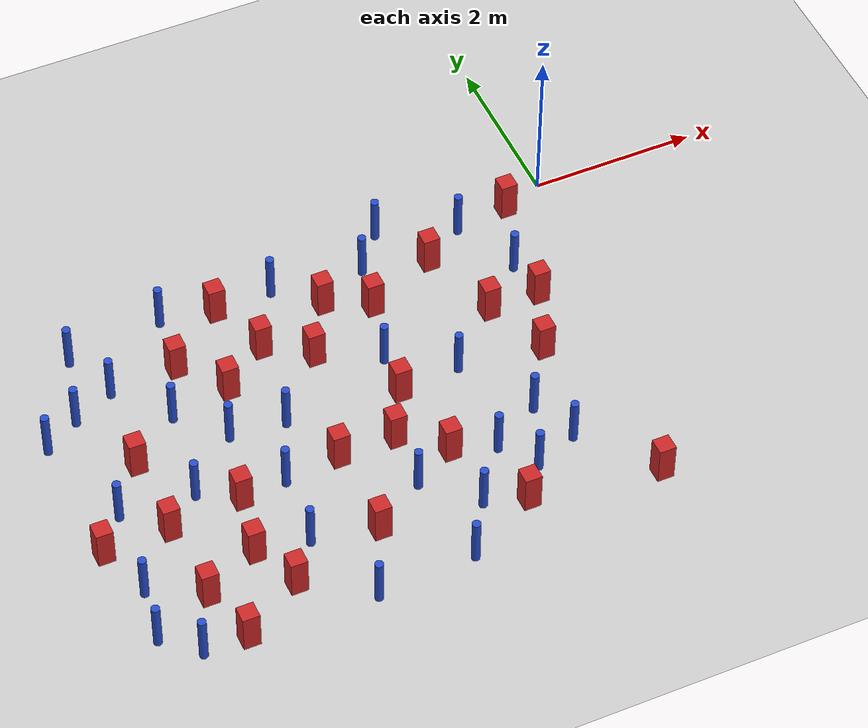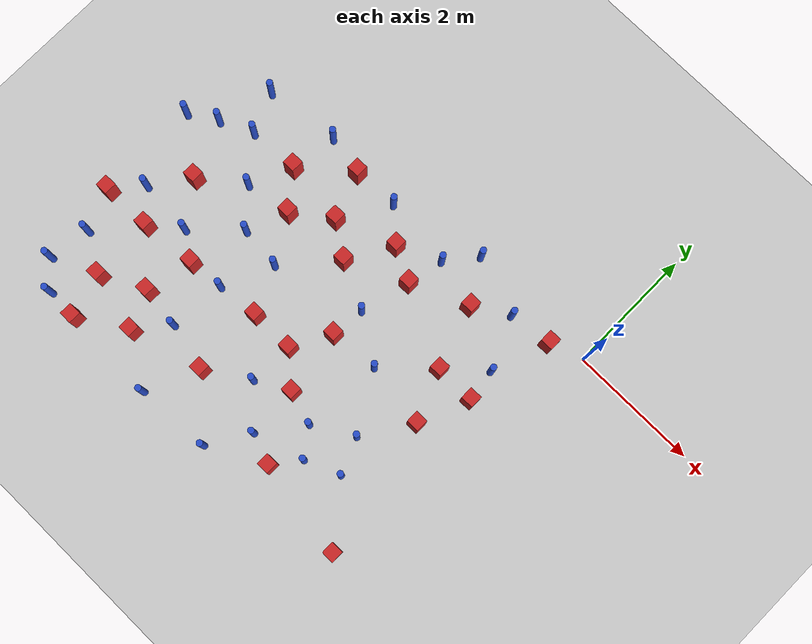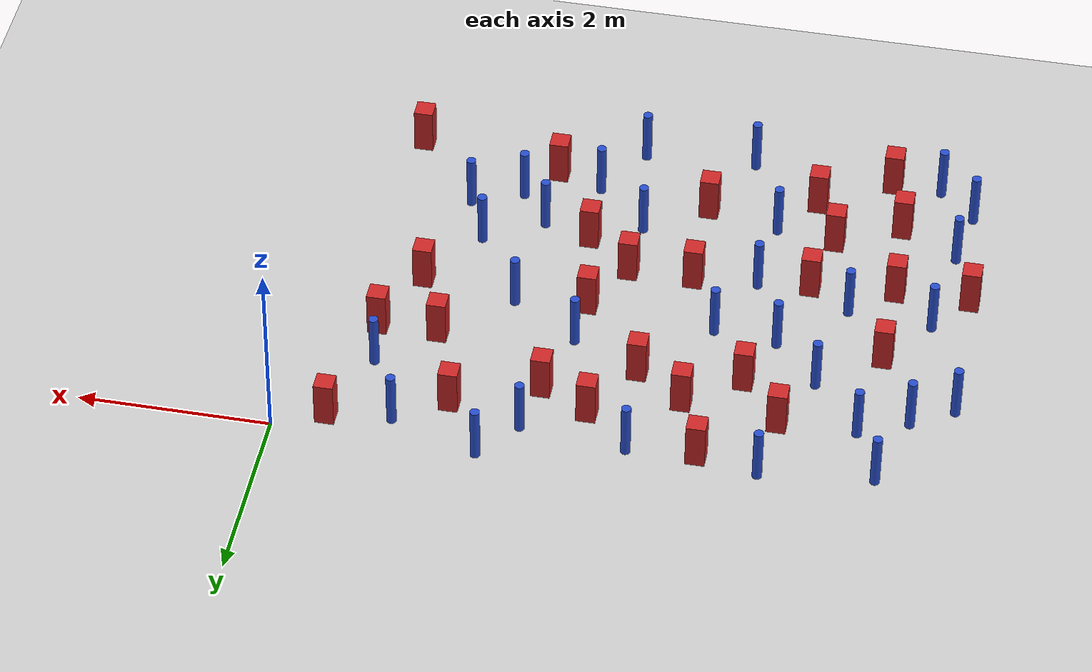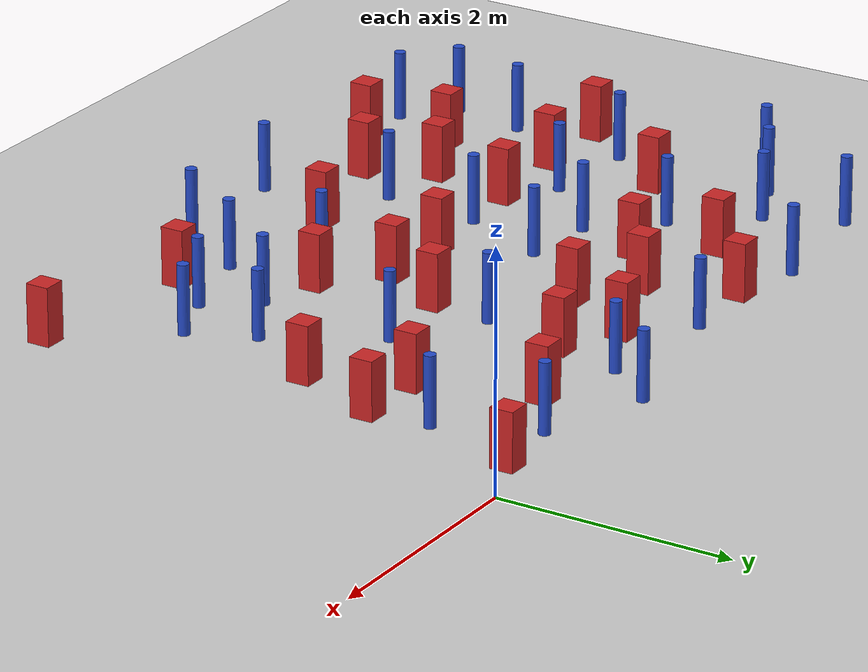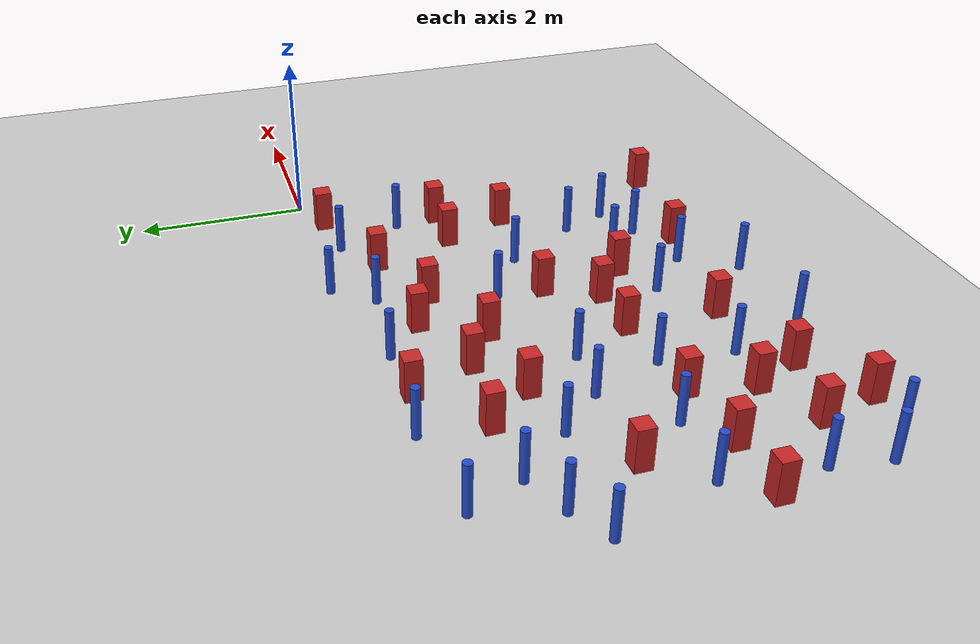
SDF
<sdf version="1.6">
 <world name="default">
  <model name="ground_plane">
   <static>1</static>
   <link name="link">
    <collision name="collision">
     <geometry><plane><normal>0 0 1</normal><size>100 100</size></plane></geometry>
     <surface><friction><ode><mu>100</mu><mu2>50</mu2></ode></friction></surface>
    </collision>
    <visual name="visual">
     <cast_shadows>0</cast_shadows>
     <geometry><plane><normal>0 0 1</normal><size>100 100</size></plane></geometry>
     <material>
      <ambient>1.0 1.0 1.0 1.0</ambient>
      <diffuse>0.8 0.8 0.8 1.0</diffuse>
      <specular>0.01 0.01 0.01 1.000000</specular>
     </material>
    </visual>
   </link>
  </model>
  <model name="pole_obstacle2">
   <static>true</static>
   <pose>-4.19352279488 -4.81479758741 -2.66029137441e-07 -5.69430205655e-07 6.84129966534e-07 -8.68349370984e-08</pose>
   <link name="link">
    <pose>0 0 0.3 0 -0 0</pose>
    <inertial>
     <mass>1</mass>
     <inertia><ixx>0.145833</ixx><ixy>0</ixy><ixz>0</ixz><iyy>0.145833</iyy><iyz>0</iyz><izz>0.125</izz></inertia>
    </inertial>
    <collision name="collision">
     <geometry><cylinder><radius>0.05</radius><length>.6</length></cylinder></geometry>
    </collision>
    <visual name="visual">
     <geometry><cylinder><radius>0.05</radius><length>.6</length></cylinder></geometry>
     <material>
      <script><name>Gazebo/Blue</name><uri>file://media/materials/scripts/gazebo.material</uri></script>
     </material>
    </visual>
   </link>
  </model>
  <model name="square_post_obstacle4">
   <static>true</static>
   <pose>-3.83080562051 -2.89418238608 -7.80171244635e-07 7.17449752808e-06 -5.6639232126e-07 2.2715510512e-05</pose>
   <link name="link">
    <pose>0 0 0.25 0 -0 0</pose>
    <inertial>
     <mass>100</mass>
     <inertia>
      <ixx>0.166667</ixx>
      <ixy>0</ixy>
      <ixz>0</ixz>
      <iyy>0.166667</iyy>
      <iyz>0</iyz>
      <izz>0.166667</izz>
     </inertia>
    </inertial>
    <collision name="collision"><geometry><box><size>.2 .2 .5</size></box></geometry></collision>
    <visual name="visual">
     <geometry><box><size>.2 .2 .5</size></box></geometry>
     <material>
      <script><name>Gazebo/Red</name><uri>file://media/materials/scripts/gazebo.material</uri></script>
     </material>
    </visual>
   </link>
  </model>
  <model name="square_post_obstacle9">
   <static>true</static>
   <pose>-5.68280838163 -4.75966509383 -7.80171244635e-07 7.17449752808e-06 -5.6639232126e-07 2.2715510512e-05</pose>
   <link name="link">
    <pose>0 0 0.25 0 -0 0</pose>
    <inertial>
     <mass>100</mass>
     <inertia>
      <ixx>0.166667</ixx>
      <ixy>0</ixy>
      <ixz>0</ixz>
      <iyy>0.166667</iyy>
      <iyz>0</iyz>
      <izz>0.166667</izz>
     </inertia>
    </inertial>
    <collision name="collision"><geometry><box><size>.2 .2 .5</size></box></geometry></collision>
    <visual name="visual">
     <geometry><box><size>.2 .2 .5</size></box></geometry>
     <material>
      <script><name>Gazebo/Red</name><uri>file://media/materials/scripts/gazebo.material</uri></script>
     </material>
    </visual>
   </link>
  </model>
  <model name="pole_obstacle13">
   <static>true</static>
   <pose>-6.74214288484 -1.471598612 -2.66029137441e-07 -5.69430205627e-07 6.84129966567e-07 -8.68349370776e-08</pose>
   <link name="link">
    <pose>0 0 0.3 0 -0 0</pose>
    <inertial>
     <mass>1</mass>
     <inertia><ixx>0.145833</ixx><ixy>0</ixy><ixz>0</ixz><iyy>0.145833</iyy><iyz>0</iyz><izz>0.125</izz></inertia>
    </inertial>
    <collision name="collision">
     <geometry><cylinder><radius>0.05</radius><length>.6</length></cylinder></geometry>
    </collision>
    <visual name="visual">
     <geometry><cylinder><radius>0.05</radius><length>.6</length></cylinder></geometry>
     <material>
      <script><name>Gazebo/Blue</name><uri>file://media/materials/scripts/gazebo.material</uri></script>
     </material>
    </visual>
   </link>
  </model>
  <model name="square_post_obstacle10">
   <static>true</static>
   <pose>-1.38638351002 -1.59635780547 -7.80171244635e-07 7.17449752808e-06 -5.6639232126e-07 2.2715510512e-05</pose>
   <link name="link">
    <pose>0 0 0.25 0 -0 0</pose>
    <inertial>
     <mass>100</mass>
     <inertia>
      <ixx>0.166667</ixx>
      <ixy>0</ixy>
      <ixz>0</ixz>
      <iyy>0.166667</iyy>
      <iyz>0</iyz>
      <izz>0.166667</izz>
     </inertia>
    </inertial>
    <collision name="collision"><geometry><box><size>.2 .2 .5</size></box></geometry></collision>
    <visual name="visual">
     <geometry><box><size>.2 .2 .5</size></box></geometry>
     <material>
      <script><name>Gazebo/Red</name><uri>file://media/materials/scripts/gazebo.material</uri></script>
     </material>
    </visual>
   </link>
  </model>
  <model name="square_post_obstacle11">
   <static>true</static>
   <pose>-5.19711062765 -3.73991201067 -7.80171244635e-07 7.17449752808e-06 -5.6639232126e-07 2.2715510512e-05</pose>
   <link name="link">
    <pose>0 0 0.25 0 -0 0</pose>
    <inertial>
     <mass>100</mass>
     <inertia>
      <ixx>0.166667</ixx>
      <ixy>0</ixy>
      <ixz>0</ixz>
      <iyy>0.166667</iyy>
      <iyz>0</iyz>
      <izz>0.166667</izz>
     </inertia>
    </inertial>
    <collision name="collision"><geometry><box><size>.2 .2 .5</size></box></geometry></collision>
    <visual name="visual">
     <geometry><box><size>.2 .2 .5</size></box></geometry>
     <material>
      <script><name>Gazebo/Red</name><uri>file://media/materials/scripts/gazebo.material</uri></script>
     </material>
    </visual>
   </link>
  </model>
  <model name="pole_obstacle16">
   <static>true</static>
   <pose>-6.58028330687 -4.39368769634 -2.66029137441e-07 -5.69430205655e-07 6.84129966534e-07 -8.68349370984e-08</pose>
   <link name="link">
    <pose>0 0 0.3 0 -0 0</pose>
    <inertial>
     <mass>1</mass>
     <inertia><ixx>0.145833</ixx><ixy>0</ixy><ixz>0</ixz><iyy>0.145833</iyy><iyz>0</iyz><izz>0.125</izz></inertia>
    </inertial>
    <collision name="collision">
     <geometry><cylinder><radius>0.05</radius><length>.6</length></cylinder></geometry>
    </collision>
    <visual name="visual">
     <geometry><cylinder><radius>0.05</radius><length>.6</length></cylinder></geometry>
     <material>
      <script><name>Gazebo/Blue</name><uri>file://media/materials/scripts/gazebo.material</uri></script>
     </material>
    </visual>
   </link>
  </model>
  <model name="square_post_obstacle18">
   <static>true</static>
   <pose>-1.70859231708 -0.621774522363 -7.80171244635e-07 7.17449752808e-06 -5.6639232126e-07 2.2715510512e-05</pose>
   <link name="link">
    <pose>0 0 0.25 0 -0 0</pose>
    <inertial>
     <mass>100</mass>
     <inertia>
      <ixx>0.166667</ixx>
      <ixy>0</ixy>
      <ixz>0</ixz>
      <iyy>0.166667</iyy>
      <iyz>0</iyz>
      <izz>0.166667</izz>
     </inertia>
    </inertial>
    <collision name="collision"><geometry><box><size>.2 .2 .5</size></box></geometry></collision>
    <visual name="visual">
     <geometry><box><size>.2 .2 .5</size></box></geometry>
     <material>
      <script><name>Gazebo/Red</name><uri>file://media/materials/scripts/gazebo.material</uri></script>
     </material>
    </visual>
   </link>
  </model>
  <model name="pole_obstacle24">
   <static>true</static>
   <pose>-2.63472743599 -4.11659371932 -2.66029137441e-07 -5.69430205635e-07 6.84129966557e-07 -8.68349370832e-08</pose>
   <link name="link">
    <pose>0 0 0.3 0 -0 0</pose>
    <inertial>
     <mass>1</mass>
     <inertia><ixx>0.145833</ixx><ixy>0</ixy><ixz>0</ixz><iyy>0.145833</iyy><iyz>0</iyz><izz>0.125</izz></inertia>
    </inertial>
    <collision name="collision">
     <geometry><cylinder><radius>0.05</radius><length>.6</length></cylinder></geometry>
    </collision>
    <visual name="visual">
     <geometry><cylinder><radius>0.05</radius><length>.6</length></cylinder></geometry>
     <material>
      <script><name>Gazebo/Blue</name><uri>file://media/materials/scripts/gazebo.material</uri></script>
     </material>
    </visual>
   </link>
  </model>
  <model name="square_post_obstacle27">
   <static>true</static>
   <pose>-5.00227021987 -0.949945809549 -7.80171244635e-07 7.17449752808e-06 -5.6639232126e-07 2.2715510512e-05</pose>
   <link name="link">
    <pose>0 0 0.25 0 -0 0</pose>
    <inertial>
     <mass>100</mass>
     <inertia>
      <ixx>0.166667</ixx>
      <ixy>0</ixy>
      <ixz>0</ixz>
      <iyy>0.166667</iyy>
      <iyz>0</iyz>
      <izz>0.166667</izz>
     </inertia>
    </inertial>
    <collision name="collision"><geometry><box><size>.2 .2 .5</size></box></geometry></collision>
    <visual name="visual">
     <geometry><box><size>.2 .2 .5</size></box></geometry>
     <material>
      <script><name>Gazebo/Red</name><uri>file://media/materials/scripts/gazebo.material</uri></script>
     </material>
    </visual>
   </link>
  </model>
  <model name="pole_obstacle41">
   <static>true</static>
   <pose>-5.47940706402 -2.73009144267 -2.66029137441e-07 -5.69430205643e-07 6.84129966548e-07 -8.68349370881e-08</pose>
   <link name="link">
    <pose>0 0 0.3 0 -0 0</pose>
    <inertial>
     <mass>1</mass>
     <inertia><ixx>0.145833</ixx><ixy>0</ixy><ixz>0</ixz><iyy>0.145833</iyy><iyz>0</iyz><izz>0.125</izz></inertia>
    </inertial>
    <collision name="collision">
     <geometry><cylinder><radius>0.05</radius><length>.6</length></cylinder></geometry>
    </collision>
    <visual name="visual">
     <geometry><cylinder><radius>0.05</radius><length>.6</length></cylinder></geometry>
     <material>
      <script><name>Gazebo/Blue</name><uri>file://media/materials/scripts/gazebo.material</uri></script>
     </material>
    </visual>
   </link>
  </model>
  <model name="square_post_obstacle34">
   <static>true</static>
   <pose>-4.27824932551 -0.343052109498 -7.80171244635e-07 7.17449752808e-06 -5.6639232126e-07 2.2715510512e-05</pose>
   <link name="link">
    <pose>0 0 0.25 0 -0 0</pose>
    <inertial>
     <mass>100</mass>
     <inertia>
      <ixx>0.166667</ixx>
      <ixy>0</ixy>
      <ixz>0</ixz>
      <iyy>0.166667</iyy>
      <iyz>0</iyz>
      <izz>0.166667</izz>
     </inertia>
    </inertial>
    <collision name="collision"><geometry><box><size>.2 .2 .5</size></box></geometry></collision>
    <visual name="visual">
     <geometry><box><size>.2 .2 .5</size></box></geometry>
     <material>
      <script><name>Gazebo/Red</name><uri>file://media/materials/scripts/gazebo.material</uri></script>
     </material>
    </visual>
   </link>
  </model>
  <model name="pole_obstacle46">
   <static>true</static>
   <pose>-6.35343098746 -2.66331438429 -2.66029137441e-07 -5.69430205643e-07 6.84129966548e-07 -8.68349370881e-08</pose>
   <link name="link">
    <pose>0 0 0.3 0 -0 0</pose>
    <inertial>
     <mass>1</mass>
     <inertia><ixx>0.145833</ixx><ixy>0</ixy><ixz>0</ixz><iyy>0.145833</iyy><iyz>0</iyz><izz>0.125</izz></inertia>
    </inertial>
    <collision name="collision">
     <geometry><cylinder><radius>0.05</radius><length>.6</length></cylinder></geometry>
    </collision>
    <visual name="visual">
     <geometry><cylinder><radius>0.05</radius><length>.6</length></cylinder></geometry>
     <material>
      <script><name>Gazebo/Blue</name><uri>file://media/materials/scripts/gazebo.material</uri></script>
     </material>
    </visual>
   </link>
  </model>
  <model name="pole_obstacle47">
   <static>true</static>
   <pose>-4.82284585025 -2.11398247978 -2.66029137441e-07 -5.69430205643e-07 6.84129966548e-07 -8.68349370881e-08</pose>
   <link name="link">
    <pose>0 0 0.3 0 -0 0</pose>
    <inertial>
     <mass>1</mass>
     <inertia><ixx>0.145833</ixx><ixy>0</ixy><ixz>0</ixz><iyy>0.145833</iyy><iyz>0</iyz><izz>0.125</izz></inertia>
    </inertial>
    <collision name="collision">
     <geometry><cylinder><radius>0.05</radius><length>.6</length></cylinder></geometry>
    </collision>
    <visual name="visual">
     <geometry><cylinder><radius>0.05</radius><length>.6</length></cylinder></geometry>
     <material>
      <script><name>Gazebo/Blue</name><uri>file://media/materials/scripts/gazebo.material</uri></script>
     </material>
    </visual>
   </link>
  </model>
  <model name="square_post_obstacle37">
   <static>true</static>
   <pose>-4.94140647001 -4.30706209107 -7.80171244635e-07 7.17449752808e-06 -5.6639232126e-07 2.2715510512e-05</pose>
   <link name="link">
    <pose>0 0 0.25 0 -0 0</pose>
    <inertial>
     <mass>100</mass>
     <inertia>
      <ixx>0.166667</ixx>
      <ixy>0</ixy>
      <ixz>0</ixz>
      <iyy>0.166667</iyy>
      <iyz>0</iyz>
      <izz>0.166667</izz>
     </inertia>
    </inertial>
    <collision name="collision"><geometry><box><size>.2 .2 .5</size></box></geometry></collision>
    <visual name="visual">
     <geometry><box><size>.2 .2 .5</size></box></geometry>
     <material>
      <script><name>Gazebo/Red</name><uri>file://media/materials/scripts/gazebo.material</uri></script>
     </material>
    </visual>
   </link>
  </model>
  <model name="square_post_obstacle39">
   <static>true</static>
   <pose>-5.86883093592 -4.07388084728 -7.80171244635e-07 7.17449752808e-06 -5.6639232126e-07 2.2715510512e-05</pose>
   <link name="link">
    <pose>0 0 0.25 0 -0 0</pose>
    <inertial>
     <mass>100</mass>
     <inertia>
      <ixx>0.166667</ixx>
      <ixy>0</ixy>
      <ixz>0</ixz>
      <iyy>0.166667</iyy>
      <iyz>0</iyz>
      <izz>0.166667</izz>
     </inertia>
    </inertial>
    <collision name="collision"><geometry><box><size>.2 .2 .5</size></box></geometry></collision>
    <visual name="visual">
     <geometry><box><size>.2 .2 .5</size></box></geometry>
     <material>
      <script><name>Gazebo/Red</name><uri>file://media/materials/scripts/gazebo.material</uri></script>
     </material>
    </visual>
   </link>
  </model>
  <model name="pole_obstacle56">
   <static>true</static>
   <pose>-4.16320525898 -2.18280227309 -2.66029137441e-07 -5.69430205643e-07 6.84129966548e-07 -8.68349370881e-08</pose>
   <link name="link">
    <pose>0 0 0.3 0 -0 0</pose>
    <inertial>
     <mass>1</mass>
     <inertia><ixx>0.145833</ixx><ixy>0</ixy><ixz>0</ixz><iyy>0.145833</iyy><iyz>0</iyz><izz>0.125</izz></inertia>
    </inertial>
    <collision name="collision">
     <geometry><cylinder><radius>0.05</radius><length>.6</length></cylinder></geometry>
    </collision>
    <visual name="visual">
     <geometry><cylinder><radius>0.05</radius><length>.6</length></cylinder></geometry>
     <material>
      <script><name>Gazebo/Blue</name><uri>file://media/materials/scripts/gazebo.material</uri></script>
     </material>
    </visual>
   </link>
  </model>
  <model name="pole_obstacle61">
   <static>true</static>
   <pose>-6.31188474499 -1.21319926311 -2.66029137441e-07 -5.69430205627e-07 6.84129966567e-07 -8.68349370776e-08</pose>
   <link name="link">
    <pose>0 0 0.3 0 -0 0</pose>
    <inertial>
     <mass>1</mass>
     <inertia><ixx>0.145833</ixx><ixy>0</ixy><ixz>0</ixz><iyy>0.145833</iyy><iyz>0</iyz><izz>0.125</izz></inertia>
    </inertial>
    <collision name="collision">
     <geometry><cylinder><radius>0.05</radius><length>.6</length></cylinder></geometry>
    </collision>
    <visual name="visual">
     <geometry><cylinder><radius>0.05</radius><length>.6</length></cylinder></geometry>
     <material>
      <script><name>Gazebo/Blue</name><uri>file://media/materials/scripts/gazebo.material</uri></script>
     </material>
    </visual>
   </link>
  </model>
  <model name="pole_obstacle63">
   <static>true</static>
   <pose>-4.49592914218 -2.96091361006 -2.66029137441e-07 -5.69430205643e-07 6.84129966548e-07 -8.68349370881e-08</pose>
   <link name="link">
    <pose>0 0 0.3 0 -0 0</pose>
    <inertial>
     <mass>1</mass>
     <inertia><ixx>0.145833</ixx><ixy>0</ixy><ixz>0</ixz><iyy>0.145833</iyy><iyz>0</iyz><izz>0.125</izz></inertia>
    </inertial>
    <collision name="collision">
     <geometry><cylinder><radius>0.05</radius><length>.6</length></cylinder></geometry>
    </collision>
    <visual name="visual">
     <geometry><cylinder><radius>0.05</radius><length>.6</length></cylinder></geometry>
     <material>
      <script><name>Gazebo/Blue</name><uri>file://media/materials/scripts/gazebo.material</uri></script>
     </material>
    </visual>
   </link>
  </model>
  <model name="square_post_obstacle55">
   <static>true</static>
   <pose>-2.15670331081 -4.2815640013 -7.80171244635e-07 7.17449752808e-06 -5.6639232126e-07 2.2715510512e-05</pose>
   <link name="link">
    <pose>0 0 0.25 0 -0 0</pose>
    <inertial>
     <mass>100</mass>
     <inertia>
      <ixx>0.166667</ixx>
      <ixy>0</ixy>
      <ixz>0</ixz>
      <iyy>0.166667</iyy>
      <iyz>0</iyz>
      <izz>0.166667</izz>
     </inertia>
    </inertial>
    <collision name="collision"><geometry><box><size>.2 .2 .5</size></box></geometry></collision>
    <visual name="visual">
     <geometry><box><size>.2 .2 .5</size></box></geometry>
     <material>
      <script><name>Gazebo/Red</name><uri>file://media/materials/scripts/gazebo.material</uri></script>
     </material>
    </visual>
   </link>
  </model>
  <model name="square_post_obstacle57">
   <static>true</static>
   <pose>-2.58412446862 -1.00005173597 -7.80171244635e-07 7.17449752808e-06 -5.6639232126e-07 2.2715510512e-05</pose>
   <link name="link">
    <pose>0 0 0.25 0 -0 0</pose>
    <inertial>
     <mass>100</mass>
     <inertia>
      <ixx>0.166667</ixx>
      <ixy>0</ixy>
      <ixz>0</ixz>
      <iyy>0.166667</iyy>
      <iyz>0</iyz>
      <izz>0.166667</izz>
     </inertia>
    </inertial>
    <collision name="collision"><geometry><box><size>.2 .2 .5</size></box></geometry></collision>
    <visual name="visual">
     <geometry><box><size>.2 .2 .5</size></box></geometry>
     <material>
      <script><name>Gazebo/Red</name><uri>file://media/materials/scripts/gazebo.material</uri></script>
     </material>
    </visual>
   </link>
  </model>
  <model name="square_post_obstacle63">
   <static>true</static>
   <pose>-3.49701246144 -1.4194377723 -7.80171244635e-07 7.17449752808e-06 -5.6639232126e-07 2.2715510512e-05</pose>
   <link name="link">
    <pose>0 0 0.25 0 -0 0</pose>
    <inertial>
     <mass>100</mass>
     <inertia>
      <ixx>0.166667</ixx>
      <ixy>0</ixy>
      <ixz>0</ixz>
      <iyy>0.166667</iyy>
      <iyz>0</iyz>
      <izz>0.166667</izz>
     </inertia>
    </inertial>
    <collision name="collision"><geometry><box><size>.2 .2 .5</size></box></geometry></collision>
    <visual name="visual">
     <geometry><box><size>.2 .2 .5</size></box></geometry>
     <material>
      <script><name>Gazebo/Red</name><uri>file://media/materials/scripts/gazebo.material</uri></script>
     </material>
    </visual>
   </link>
  </model>
  <model name="pole_obstacle74">
   <static>true</static>
   <pose>-0.83064614445 -1.08706407083 -2.66029137441e-07 -5.69430205635e-07 6.84129966557e-07 -8.68349370834e-08</pose>
   <link name="link">
    <pose>0 0 0.3 0 -0 0</pose>
    <inertial>
     <mass>1</mass>
     <inertia><ixx>0.145833</ixx><ixy>0</ixy><ixz>0</ixz><iyy>0.145833</iyy><iyz>0</iyz><izz>0.125</izz></inertia>
    </inertial>
    <collision name="collision">
     <geometry><cylinder><radius>0.05</radius><length>.6</length></cylinder></geometry>
    </collision>
    <visual name="visual">
     <geometry><cylinder><radius>0.05</radius><length>.6</length></cylinder></geometry>
     <material>
      <script><name>Gazebo/Blue</name><uri>file://media/materials/scripts/gazebo.material</uri></script>
     </material>
    </visual>
   </link>
  </model>
  <model name="pole_obstacle76">
   <static>true</static>
   <pose>-2.06792201332 -2.2311277292 -2.66029137441e-07 -5.69430205643e-07 6.84129966548e-07 -8.68349370903e-08</pose>
   <link name="link">
    <pose>0 0 0.3 0 -0 0</pose>
    <inertial>
     <mass>1</mass>
     <inertia><ixx>0.145833</ixx><ixy>0</ixy><ixz>0</ixz><iyy>0.145833</iyy><iyz>0</iyz><izz>0.125</izz></inertia>
    </inertial>
    <collision name="collision">
     <geometry><cylinder><radius>0.05</radius><length>.6</length></cylinder></geometry>
    </collision>
    <visual name="visual">
     <geometry><cylinder><radius>0.05</radius><length>.6</length></cylinder></geometry>
     <material>
      <script><name>Gazebo/Blue</name><uri>file://media/materials/scripts/gazebo.material</uri></script>
     </material>
    </visual>
   </link>
  </model>
  <model name="square_post_obstacle65">
   <static>true</static>
   <pose>-3.10007768537 -0.735137431214 -7.80171244635e-07 7.17449752808e-06 -5.6639232126e-07 2.2715510512e-05</pose>
   <link name="link">
    <pose>0 0 0.25 0 -0 0</pose>
    <inertial>
     <mass>100</mass>
     <inertia>
      <ixx>0.166667</ixx>
      <ixy>0</ixy>
      <ixz>0</ixz>
      <iyy>0.166667</iyy>
      <iyz>0</iyz>
      <izz>0.166667</izz>
     </inertia>
    </inertial>
    <collision name="collision"><geometry><box><size>.2 .2 .5</size></box></geometry></collision>
    <visual name="visual">
     <geometry><box><size>.2 .2 .5</size></box></geometry>
     <material>
      <script><name>Gazebo/Red</name><uri>file://media/materials/scripts/gazebo.material</uri></script>
     </material>
    </visual>
   </link>
  </model>
  <model name="square_post_obstacle66">
   <static>true</static>
   <pose>-3.82150218377 -3.99885456257 -7.80171244635e-07 7.17449752808e-06 -5.6639232126e-07 2.2715510512e-05</pose>
   <link name="link">
    <pose>0 0 0.25 0 -0 0</pose>
    <inertial>
     <mass>100</mass>
     <inertia>
      <ixx>0.166667</ixx>
      <ixy>0</ixy>
      <ixz>0</ixz>
      <iyy>0.166667</iyy>
      <iyz>0</iyz>
      <izz>0.166667</izz>
     </inertia>
    </inertial>
    <collision name="collision"><geometry><box><size>.2 .2 .5</size></box></geometry></collision>
    <visual name="visual">
     <geometry><box><size>.2 .2 .5</size></box></geometry>
     <material>
      <script><name>Gazebo/Red</name><uri>file://media/materials/scripts/gazebo.material</uri></script>
     </material>
    </visual>
   </link>
  </model>
  <model name="square_post_obstacle69">
   <static>true</static>
   <pose>-2.82061521446 -2.30174827791 -7.80171244635e-07 7.17449752808e-06 -5.6639232126e-07 2.2715510512e-05</pose>
   <link name="link">
    <pose>0 0 0.25 0 -0 0</pose>
    <inertial>
     <mass>100</mass>
     <inertia>
      <ixx>0.166667</ixx>
      <ixy>0</ixy>
      <ixz>0</ixz>
      <iyy>0.166667</iyy>
      <iyz>0</iyz>
      <izz>0.166667</izz>
     </inertia>
    </inertial>
    <collision name="collision"><geometry><box><size>.2 .2 .5</size></box></geometry></collision>
    <visual name="visual">
     <geometry><box><size>.2 .2 .5</size></box></geometry>
     <material>
      <script><name>Gazebo/Red</name><uri>file://media/materials/scripts/gazebo.material</uri></script>
     </material>
    </visual>
   </link>
  </model>
  <model name="square_post_obstacle85">
   <static>true</static>
   <pose>-1.0743390219 -2.37967845214 -7.80171244635e-07 7.17449752808e-06 -5.6639232126e-07 2.2715510512e-05</pose>
   <link name="link">
    <pose>0 0 0.25 0 -0 0</pose>
    <inertial>
     <mass>100</mass>
     <inertia>
      <ixx>0.166667</ixx>
      <ixy>0</ixy>
      <ixz>0</ixz>
      <iyy>0.166667</iyy>
      <iyz>0</iyz>
      <izz>0.166667</izz>
     </inertia>
    </inertial>
    <collision name="collision"><geometry><box><size>.2 .2 .5</size></box></geometry></collision>
    <visual name="visual">
     <geometry><box><size>.2 .2 .5</size></box></geometry>
     <material>
      <script><name>Gazebo/Red</name><uri>file://media/materials/scripts/gazebo.material</uri></script>
     </material>
    </visual>
   </link>
  </model>
  <model name="pole_obstacle92">
   <static>true</static>
   <pose>-6.19909178866 -4.75148010854 -2.66029137441e-07 -5.69430205655e-07 6.84129966534e-07 -8.68349370984e-08</pose>
   <link name="link">
    <pose>0 0 0.3 0 -0 0</pose>
    <inertial>
     <mass>1</mass>
     <inertia><ixx>0.145833</ixx><ixy>0</ixy><ixz>0</ixz><iyy>0.145833</iyy><iyz>0</iyz><izz>0.125</izz></inertia>
    </inertial>
    <collision name="collision">
     <geometry><cylinder><radius>0.05</radius><length>.6</length></cylinder></geometry>
    </collision>
    <visual name="visual">
     <geometry><cylinder><radius>0.05</radius><length>.6</length></cylinder></geometry>
     <material>
      <script><name>Gazebo/Blue</name><uri>file://media/materials/scripts/gazebo.material</uri></script>
     </material>
    </visual>
   </link>
  </model>
  <model name="pole_obstacle93">
   <static>true</static>
   <pose>-6.07275097592 -0.356900269829 -2.66029137441e-07 -5.69430205637e-07 6.84129966554e-07 -8.68349370845e-08</pose>
   <link name="link">
    <pose>0 0 0.3 0 -0 0</pose>
    <inertial>
     <mass>1</mass>
     <inertia><ixx>0.145833</ixx><ixy>0</ixy><ixz>0</ixz><iyy>0.145833</iyy><iyz>0</iyz><izz>0.125</izz></inertia>
    </inertial>
    <collision name="collision">
     <geometry><cylinder><radius>0.05</radius><length>.6</length></cylinder></geometry>
    </collision>
    <visual name="visual">
     <geometry><cylinder><radius>0.05</radius><length>.6</length></cylinder></geometry>
     <material>
      <script><name>Gazebo/Blue</name><uri>file://media/materials/scripts/gazebo.material</uri></script>
     </material>
    </visual>
   </link>
  </model>
  <model name="square_post_obstacle88">
   <static>true</static>
   <pose>-2.66438617891 -3.30960713157 -7.80171244635e-07 7.17449752808e-06 -5.6639232126e-07 2.2715510512e-05</pose>
   <link name="link">
    <pose>0 0 0.25 0 -0 0</pose>
    <inertial>
     <mass>100</mass>
     <inertia>
      <ixx>0.166667</ixx>
      <ixy>0</ixy>
      <ixz>0</ixz>
      <iyy>0.166667</iyy>
      <iyz>0</iyz>
      <izz>0.166667</izz>
     </inertia>
    </inertial>
    <collision name="collision"><geometry><box><size>.2 .2 .5</size></box></geometry></collision>
    <visual name="visual">
     <geometry><box><size>.2 .2 .5</size></box></geometry>
     <material>
      <script><name>Gazebo/Red</name><uri>file://media/materials/scripts/gazebo.material</uri></script>
     </material>
    </visual>
   </link>
  </model>
  <model name="pole_obstacle96">
   <static>true</static>
   <pose>-4.57448902758 -3.83286323486 -2.66029137441e-07 -5.69430205643e-07 6.84129966548e-07 -8.68349370881e-08</pose>
   <link name="link">
    <pose>0 0 0.3 0 -0 0</pose>
    <inertial>
     <mass>1</mass>
     <inertia><ixx>0.145833</ixx><ixy>0</ixy><ixz>0</ixz><iyy>0.145833</iyy><iyz>0</iyz><izz>0.125</izz></inertia>
    </inertial>
    <collision name="collision">
     <geometry><cylinder><radius>0.05</radius><length>.6</length></cylinder></geometry>
    </collision>
    <visual name="visual">
     <geometry><cylinder><radius>0.05</radius><length>.6</length></cylinder></geometry>
     <material>
      <script><name>Gazebo/Blue</name><uri>file://media/materials/scripts/gazebo.material</uri></script>
     </material>
    </visual>
   </link>
  </model>
  <model name="pole_obstacle99">
   <static>true</static>
   <pose>-1.18130777628 -0.288504595609 -2.66029137441e-07 -5.69430205639e-07 6.84129966553e-07 -8.68349370864e-08</pose>
   <link name="link">
    <pose>0 0 0.3 0 -0 0</pose>
    <inertial>
     <mass>1</mass>
     <inertia><ixx>0.145833</ixx><ixy>0</ixy><ixz>0</ixz><iyy>0.145833</iyy><iyz>0</iyz><izz>0.125</izz></inertia>
    </inertial>
    <collision name="collision">
     <geometry><cylinder><radius>0.05</radius><length>.6</length></cylinder></geometry>
    </collision>
    <visual name="visual">
     <geometry><cylinder><radius>0.05</radius><length>.6</length></cylinder></geometry>
     <material>
      <script><name>Gazebo/Blue</name><uri>file://media/materials/scripts/gazebo.material</uri></script>
     </material>
    </visual>
   </link>
  </model>
  <model name="pole_obstacle107">
   <static>true</static>
   <pose>-4.91256499014 -0.213724879157 -2.66029137441e-07 -5.6943020563e-07 6.84129966562e-07 -8.68349370806e-08</pose>
   <link name="link">
    <pose>0 0 0.3 0 -0 0</pose>
    <inertial>
     <mass>1</mass>
     <inertia><ixx>0.145833</ixx><ixy>0</ixy><ixz>0</ixz><iyy>0.145833</iyy><iyz>0</iyz><izz>0.125</izz></inertia>
    </inertial>
    <collision name="collision">
     <geometry><cylinder><radius>0.05</radius><length>.6</length></cylinder></geometry>
    </collision>
    <visual name="visual">
     <geometry><cylinder><radius>0.05</radius><length>.6</length></cylinder></geometry>
     <material>
      <script><name>Gazebo/Blue</name><uri>file://media/materials/scripts/gazebo.material</uri></script>
     </material>
    </visual>
   </link>
  </model>
  <model name="pole_obstacle112">
   <static>true</static>
   <pose>-3.56927096095 -0.30536620204 -2.66029137441e-07 -5.69430205624e-07 6.8412996657e-07 -8.6834937075e-08</pose>
   <link name="link">
    <pose>0 0 0.3 0 -0 0</pose>
    <inertial>
     <mass>1</mass>
     <inertia><ixx>0.145833</ixx><ixy>0</ixy><ixz>0</ixz><iyy>0.145833</iyy><iyz>0</iyz><izz>0.125</izz></inertia>
    </inertial>
    <collision name="collision">
     <geometry><cylinder><radius>0.05</radius><length>.6</length></cylinder></geometry>
    </collision>
    <visual name="visual">
     <geometry><cylinder><radius>0.05</radius><length>.6</length></cylinder></geometry>
     <material>
      <script><name>Gazebo/Blue</name><uri>file://media/materials/scripts/gazebo.material</uri></script>
     </material>
    </visual>
   </link>
  </model>
  <model name="pole_obstacle113">
   <static>true</static>
   <pose>-1.54559647013 -3.11696384526 -2.66029137441e-07 -5.69430205634e-07 6.84129966558e-07 -8.68349370806e-08</pose>
   <link name="link">
    <pose>0 0 0.3 0 -0 0</pose>
    <inertial>
     <mass>1</mass>
     <inertia><ixx>0.145833</ixx><ixy>0</ixy><ixz>0</ixz><iyy>0.145833</iyy><iyz>0</iyz><izz>0.125</izz></inertia>
    </inertial>
    <collision name="collision">
     <geometry><cylinder><radius>0.05</radius><length>.6</length></cylinder></geometry>
    </collision>
    <visual name="visual">
     <geometry><cylinder><radius>0.05</radius><length>.6</length></cylinder></geometry>
     <material>
      <script><name>Gazebo/Blue</name><uri>file://media/materials/scripts/gazebo.material</uri></script>
     </material>
    </visual>
   </link>
  </model>
  <model name="pole_obstacle130">
   <static>true</static>
   <pose>-5.29995132593 -1.59799704929 -2.66029137441e-07 -5.69430205627e-07 6.84129966567e-07 -8.68349370776e-08</pose>
   <link name="link">
    <pose>0 0 0.3 0 -0 0</pose>
    <inertial>
     <mass>1</mass>
     <inertia><ixx>0.145833</ixx><ixy>0</ixy><ixz>0</ixz><iyy>0.145833</iyy><iyz>0</iyz><izz>0.125</izz></inertia>
    </inertial>
    <collision name="collision">
     <geometry><cylinder><radius>0.05</radius><length>.6</length></cylinder></geometry>
    </collision>
    <visual name="visual">
     <geometry><cylinder><radius>0.05</radius><length>.6</length></cylinder></geometry>
     <material>
      <script><name>Gazebo/Blue</name><uri>file://media/materials/scripts/gazebo.material</uri></script>
     </material>
    </visual>
   </link>
  </model>
  <model name="pole_obstacle131">
   <static>true</static>
   <pose>-2.10483708038 0.0313827029848 -2.66029137497e-07 -5.69430205672e-07 6.84129966506e-07 -8.68349371091e-08</pose>
   <link name="link">
    <pose>0 0 0.3 0 -0 0</pose>
    <inertial>
     <mass>1</mass>
     <inertia><ixx>0.145833</ixx><ixy>0</ixy><ixz>0</ixz><iyy>0.145833</iyy><iyz>0</iyz><izz>0.125</izz></inertia>
    </inertial>
    <collision name="collision">
     <geometry><cylinder><radius>0.05</radius><length>.6</length></cylinder></geometry>
    </collision>
    <visual name="visual">
     <geometry><cylinder><radius>0.05</radius><length>.6</length></cylinder></geometry>
     <material>
      <script><name>Gazebo/Blue</name><uri>file://media/materials/scripts/gazebo.material</uri></script>
     </material>
    </visual>
   </link>
  </model>
  <model name="pole_obstacle133">
   <static>true</static>
   <pose>-3.0201409346 -4.74466584628 -2.66029137441e-07 -5.69430205635e-07 6.84129966557e-07 -8.68349370832e-08</pose>
   <link name="link">
    <pose>0 0 0.3 0 -0 0</pose>
    <inertial>
     <mass>1</mass>
     <inertia><ixx>0.145833</ixx><ixy>0</ixy><ixz>0</ixz><iyy>0.145833</iyy><iyz>0</iyz><izz>0.125</izz></inertia>
    </inertial>
    <collision name="collision">
     <geometry><cylinder><radius>0.05</radius><length>.6</length></cylinder></geometry>
    </collision>
    <visual name="visual">
     <geometry><cylinder><radius>0.05</radius><length>.6</length></cylinder></geometry>
     <material>
      <script><name>Gazebo/Blue</name><uri>file://media/materials/scripts/gazebo.material</uri></script>
     </material>
    </visual>
   </link>
  </model>
  <model name="square_post_obstacle133">
   <static>true</static>
   <pose>-4.57759356761 -1.4849960874 -7.80171244635e-07 7.17449752808e-06 -5.6639232126e-07 2.2715510512e-05</pose>
   <link name="link">
    <pose>0 0 0.25 0 -0 0</pose>
    <inertial>
     <mass>100</mass>
     <inertia>
      <ixx>0.166667</ixx>
      <ixy>0</ixy>
      <ixz>0</ixz>
      <iyy>0.166667</iyy>
      <iyz>0</iyz>
      <izz>0.166667</izz>
     </inertia>
    </inertial>
    <collision name="collision"><geometry><box><size>.2 .2 .5</size></box></geometry></collision>
    <visual name="visual">
     <geometry><box><size>.2 .2 .5</size></box></geometry>
     <material>
      <script><name>Gazebo/Red</name><uri>file://media/materials/scripts/gazebo.material</uri></script>
     </material>
    </visual>
   </link>
  </model>
  <model name="square_post_obstacle137">
   <static>true</static>
   <pose>-6.69667274336 -3.09412095804 -7.80171244635e-07 7.17449752808e-06 -5.6639232126e-07 2.2715510512e-05</pose>
   <link name="link">
    <pose>0 0 0.25 0 -0 0</pose>
    <inertial>
     <mass>100</mass>
     <inertia>
      <ixx>0.166667</ixx>
      <ixy>0</ixy>
      <ixz>0</ixz>
      <iyy>0.166667</iyy>
      <iyz>0</iyz>
      <izz>0.166667</izz>
     </inertia>
    </inertial>
    <collision name="collision"><geometry><box><size>.2 .2 .5</size></box></geometry></collision>
    <visual name="visual">
     <geometry><box><size>.2 .2 .5</size></box></geometry>
     <material>
      <script><name>Gazebo/Red</name><uri>file://media/materials/scripts/gazebo.material</uri></script>
     </material>
    </visual>
   </link>
  </model>
  <model name="pole_obstacle148">
   <static>true</static>
   <pose>-2.15344537676 -3.4720995635 -2.66029137441e-07 -5.69430205643e-07 6.84129966548e-07 -8.68349370903e-08</pose>
   <link name="link">
    <pose>0 0 0.3 0 -0 0</pose>
    <inertial>
     <mass>1</mass>
     <inertia><ixx>0.145833</ixx><ixy>0</ixy><ixz>0</ixz><iyy>0.145833</iyy><iyz>0</iyz><izz>0.125</izz></inertia>
    </inertial>
    <collision name="collision">
     <geometry><cylinder><radius>0.05</radius><length>.6</length></cylinder></geometry>
    </collision>
    <visual name="visual">
     <geometry><cylinder><radius>0.05</radius><length>.6</length></cylinder></geometry>
     <material>
      <script><name>Gazebo/Blue</name><uri>file://media/materials/scripts/gazebo.material</uri></script>
     </material>
    </visual>
   </link>
  </model>
  <model name="square_post_obstacle148">
   <static>true</static>
   <pose>-0.638124273127 -4.50933013054 -7.80171244635e-07 7.17449752808e-06 -5.6639232126e-07 2.2715510512e-05</pose>
   <link name="link">
    <pose>0 0 0.25 0 -0 0</pose>
    <inertial>
     <mass>100</mass>
     <inertia>
      <ixx>0.166667</ixx>
      <ixy>0</ixy>
      <ixz>0</ixz>
      <iyy>0.166667</iyy>
      <iyz>0</iyz>
      <izz>0.166667</izz>
     </inertia>
    </inertial>
    <collision name="collision"><geometry><box><size>.2 .2 .5</size></box></geometry></collision>
    <visual name="visual">
     <geometry><box><size>.2 .2 .5</size></box></geometry>
     <material>
      <script><name>Gazebo/Red</name><uri>file://media/materials/scripts/gazebo.material</uri></script>
     </material>
    </visual>
   </link>
  </model>
  <model name="pole_obstacle154">
   <static>true</static>
   <pose>-5.80805981798 -0.983022935484 -2.66029137441e-07 -5.69430205634e-07 6.84129966559e-07 -8.68349370812e-08</pose>
   <link name="link">
    <pose>0 0 0.3 0 -0 0</pose>
    <inertial>
     <mass>1</mass>
     <inertia><ixx>0.145833</ixx><ixy>0</ixy><ixz>0</ixz><iyy>0.145833</iyy><iyz>0</iyz><izz>0.125</izz></inertia>
    </inertial>
    <collision name="collision">
     <geometry><cylinder><radius>0.05</radius><length>.6</length></cylinder></geometry>
    </collision>
    <visual name="visual">
     <geometry><cylinder><radius>0.05</radius><length>.6</length></cylinder></geometry>
     <material>
      <script><name>Gazebo/Blue</name><uri>file://media/materials/scripts/gazebo.material</uri></script>
     </material>
    </visual>
   </link>
  </model>
  <model name="square_post_obstacle152">
   <static>true</static>
   <pose>-5.92083556177 -3.08631092215 -7.80171244635e-07 7.17449752808e-06 -5.6639232126e-07 2.2715510512e-05</pose>
   <link name="link">
    <pose>0 0 0.25 0 -0 0</pose>
    <inertial>
     <mass>100</mass>
     <inertia>
      <ixx>0.166667</ixx>
      <ixy>0</ixy>
      <ixz>0</ixz>
      <iyy>0.166667</iyy>
      <iyz>0</iyz>
      <izz>0.166667</izz>
     </inertia>
    </inertial>
    <collision name="collision"><geometry><box><size>.2 .2 .5</size></box></geometry></collision>
    <visual name="visual">
     <geometry><box><size>.2 .2 .5</size></box></geometry>
     <material>
      <script><name>Gazebo/Red</name><uri>file://media/materials/scripts/gazebo.material</uri></script>
     </material>
    </visual>
   </link>
  </model>
  <model name="pole_obstacle172">
   <static>true</static>
   <pose>-1.31812986176 -3.66513913396 -2.66029137441e-07 -5.69430205634e-07 6.84129966558e-07 -8.68349370806e-08</pose>
   <link name="link">
    <pose>0 0 0.3 0 -0 0</pose>
    <inertial>
     <mass>1</mass>
     <inertia><ixx>0.145833</ixx><ixy>0</ixy><ixz>0</ixz><iyy>0.145833</iyy><iyz>0</iyz><izz>0.125</izz></inertia>
    </inertial>
    <collision name="collision">
     <geometry><cylinder><radius>0.05</radius><length>.6</length></cylinder></geometry>
    </collision>
    <visual name="visual">
     <geometry><cylinder><radius>0.05</radius><length>.6</length></cylinder></geometry>
     <material>
      <script><name>Gazebo/Blue</name><uri>file://media/materials/scripts/gazebo.material</uri></script>
     </material>
    </visual>
   </link>
  </model>
  <model name="pole_obstacle178">
   <static>true</static>
   <pose>-6.47709141572 -3.74240389986 -2.66029137441e-07 -5.69430205643e-07 6.84129966548e-07 -8.68349370881e-08</pose>
   <link name="link">
    <pose>0 0 0.3 0 -0 0</pose>
    <inertial>
     <mass>1</mass>
     <inertia><ixx>0.145833</ixx><ixy>0</ixy><ixz>0</ixz><iyy>0.145833</iyy><iyz>0</iyz><izz>0.125</izz></inertia>
    </inertial>
    <collision name="collision">
     <geometry><cylinder><radius>0.05</radius><length>.6</length></cylinder></geometry>
    </collision>
    <visual name="visual">
     <geometry><cylinder><radius>0.05</radius><length>.6</length></cylinder></geometry>
     <material>
      <script><name>Gazebo/Blue</name><uri>file://media/materials/scripts/gazebo.material</uri></script>
     </material>
    </visual>
   </link>
  </model>
  <model name="pole_obstacle182">
   <static>true</static>
   <pose>-1.84868067084 -3.88422786367 -2.66029137441e-07 -5.69430205634e-07 6.84129966558e-07 -8.68349370806e-08</pose>
   <link name="link">
    <pose>0 0 0.3 0 -0 0</pose>
    <inertial>
     <mass>1</mass>
     <inertia><ixx>0.145833</ixx><ixy>0</ixy><ixz>0</ixz><iyy>0.145833</iyy><iyz>0</iyz><izz>0.125</izz></inertia>
    </inertial>
    <collision name="collision">
     <geometry><cylinder><radius>0.05</radius><length>.6</length></cylinder></geometry>
    </collision>
    <visual name="visual">
     <geometry><cylinder><radius>0.05</radius><length>.6</length></cylinder></geometry>
     <material>
      <script><name>Gazebo/Blue</name><uri>file://media/materials/scripts/gazebo.material</uri></script>
     </material>
    </visual>
   </link>
  </model>
  <model name="square_post_obstacle182">
   <static>true</static>
   <pose>-5.92477717383 -2.0820050109 -7.80171244635e-07 7.17449752808e-06 -5.6639232126e-07 2.2715510512e-05</pose>
   <link name="link">
    <pose>0 0 0.25 0 -0 0</pose>
    <inertial>
     <mass>100</mass>
     <inertia>
      <ixx>0.166667</ixx>
      <ixy>0</ixy>
      <ixz>0</ixz>
      <iyy>0.166667</iyy>
      <iyz>0</iyz>
      <izz>0.166667</izz>
     </inertia>
    </inertial>
    <collision name="collision"><geometry><box><size>.2 .2 .5</size></box></geometry></collision>
    <visual name="visual">
     <geometry><box><size>.2 .2 .5</size></box></geometry>
     <material>
      <script><name>Gazebo/Red</name><uri>file://media/materials/scripts/gazebo.material</uri></script>
     </material>
    </visual>
   </link>
  </model>
  <model name="pole_obstacle186">
   <static>true</static>
   <pose>-2.46700849623 -0.42507852872 -2.66029137441e-07 -5.69430205624e-07 6.8412996657e-07 -8.6834937075e-08</pose>
   <link name="link">
    <pose>0 0 0.3 0 -0 0</pose>
    <inertial>
     <mass>1</mass>
     <inertia><ixx>0.145833</ixx><ixy>0</ixy><ixz>0</ixz><iyy>0.145833</iyy><iyz>0</iyz><izz>0.125</izz></inertia>
    </inertial>
    <collision name="collision">
     <geometry><cylinder><radius>0.05</radius><length>.6</length></cylinder></geometry>
    </collision>
    <visual name="visual">
     <geometry><cylinder><radius>0.05</radius><length>.6</length></cylinder></geometry>
     <material>
      <script><name>Gazebo/Blue</name><uri>file://media/materials/scripts/gazebo.material</uri></script>
     </material>
    </visual>
   </link>
  </model>
  <model name="square_post_obstacle187">
   <static>true</static>
   <pose>-3.14580418043 -2.89233567369 -7.80171244635e-07 7.17449752808e-06 -5.6639232126e-07 2.2715510512e-05</pose>
   <link name="link">
    <pose>0 0 0.25 0 -0 0</pose>
    <inertial>
     <mass>100</mass>
     <inertia>
      <ixx>0.166667</ixx>
      <ixy>0</ixy>
      <ixz>0</ixz>
      <iyy>0.166667</iyy>
      <iyz>0</iyz>
      <izz>0.166667</izz>
     </inertia>
    </inertial>
    <collision name="collision"><geometry><box><size>.2 .2 .5</size></box></geometry></collision>
    <visual name="visual">
     <geometry><box><size>.2 .2 .5</size></box></geometry>
     <material>
      <script><name>Gazebo/Red</name><uri>file://media/materials/scripts/gazebo.material</uri></script>
     </material>
    </visual>
   </link>
  </model>
  <model name="square_post_obstacle189">
   <static>true</static>
   <pose>-0.761001727648 -1.59975529291 -7.80171244635e-07 7.17449752808e-06 -5.6639232126e-07 2.2715510512e-05</pose>
   <link name="link">
    <pose>0 0 0.25 0 -0 0</pose>
    <inertial>
     <mass>100</mass>
     <inertia>
      <ixx>0.166667</ixx>
      <ixy>0</ixy>
      <ixz>0</ixz>
      <iyy>0.166667</iyy>
      <iyz>0</iyz>
      <izz>0.166667</izz>
     </inertia>
    </inertial>
    <collision name="collision"><geometry><box><size>.2 .2 .5</size></box></geometry></collision>
    <visual name="visual">
     <geometry><box><size>.2 .2 .5</size></box></geometry>
     <material>
      <script><name>Gazebo/Red</name><uri>file://media/materials/scripts/gazebo.material</uri></script>
     </material>
    </visual>
   </link>
  </model>
  <model name="square_post_obstacle196">
   <static>true</static>
   <pose>-0.523196468546 -0.211693593083 -7.80171244635e-07 7.17449752808e-06 -5.6639232126e-07 2.2715510512e-05</pose>
   <link name="link">
    <pose>0 0 0.25 0 -0 0</pose>
    <inertial>
     <mass>100</mass>
     <inertia>
      <ixx>0.166667</ixx>
      <ixy>0</ixy>
      <ixz>0</ixz>
      <iyy>0.166667</iyy>
      <iyz>0</iyz>
      <izz>0.166667</izz>
     </inertia>
    </inertial>
    <collision name="collision"><geometry><box><size>.2 .2 .5</size></box></geometry></collision>
    <visual name="visual">
     <geometry><box><size>.2 .2 .5</size></box></geometry>
     <material>
      <script><name>Gazebo/Red</name><uri>file://media/materials/scripts/gazebo.material</uri></script>
     </material>
    </visual>
   </link>
  </model>
  <model name="square_post_obstacle197">
   <static>true</static>
   <pose>-5.04385394095 -3.00446906231 -7.80171244635e-07 7.17449752808e-06 -5.6639232126e-07 2.2715510512e-05</pose>
   <link name="link">
    <pose>0 0 0.25 0 -0 0</pose>
    <inertial>
     <mass>100</mass>
     <inertia>
      <ixx>0.166667</ixx>
      <ixy>0</ixy>
      <ixz>0</ixz>
      <iyy>0.166667</iyy>
      <iyz>0</iyz>
      <izz>0.166667</izz>
     </inertia>
    </inertial>
    <collision name="collision"><geometry><box><size>.2 .2 .5</size></box></geometry></collision>
    <visual name="visual">
     <geometry><box><size>.2 .2 .5</size></box></geometry>
     <material>
      <script><name>Gazebo/Red</name><uri>file://media/materials/scripts/gazebo.material</uri></script>
     </material>
    </visual>
   </link>
  </model>
  <model name="pole_obstacle189">
   <static>true</static>
   <pose>-3.17803344297 -3.58616072791 -2.66029137441e-07 -5.69430205643e-07 6.84129966548e-07 -8.68349370903e-08</pose>
   <link name="link">
    <pose>0 0 0.3 0 -0 0</pose>
    <inertial>
     <mass>1</mass>
     <inertia><ixx>0.145833</ixx><ixy>0</ixy><ixz>0</ixz><iyy>0.145833</iyy><iyz>0</iyz><izz>0.125</izz></inertia>
    </inertial>
    <collision name="collision">
     <geometry><cylinder><radius>0.05</radius><length>.6</length></cylinder></geometry>
    </collision>
    <visual name="visual">
     <geometry><cylinder><radius>0.05</radius><length>.6</length></cylinder></geometry>
     <material>
      <script><name>Gazebo/Blue</name><uri>file://media/materials/scripts/gazebo.material</uri></script>
     </material>
    </visual>
   </link>
  </model>
  <model name="square_post_obstacle206">
   <static>true</static>
   <pose>-4.00744832205 -1.06892294314 -7.80171244635e-07 7.17449752808e-06 -5.6639232126e-07 2.2715510512e-05</pose>
   <link name="link">
    <pose>0 0 0.25 0 -0 0</pose>
    <inertial>
     <mass>100</mass>
     <inertia>
      <ixx>0.166667</ixx>
      <ixy>0</ixy>
      <ixz>0</ixz>
      <iyy>0.166667</iyy>
      <iyz>0</iyz>
      <izz>0.166667</izz>
     </inertia>
    </inertial>
    <collision name="collision"><geometry><box><size>.2 .2 .5</size></box></geometry></collision>
    <visual name="visual">
     <geometry><box><size>.2 .2 .5</size></box></geometry>
     <material>
      <script><name>Gazebo/Red</name><uri>file://media/materials/scripts/gazebo.material</uri></script>
     </material>
    </visual>
   </link>
  </model>
  <model name="pole_obstacle202">
   <static>true</static>
   <pose>-2.78211297907 -1.76838545661 -2.66029137441e-07 -5.69430205626e-07 6.84129966567e-07 -8.68349370747e-08</pose>
   <link name="link">
    <pose>0 0 0.3 0 -0 0</pose>
    <inertial>
     <mass>1</mass>
     <inertia><ixx>0.145833</ixx><ixy>0</ixy><ixz>0</ixz><iyy>0.145833</iyy><iyz>0</iyz><izz>0.125</izz></inertia>
    </inertial>
    <collision name="collision">
     <geometry><cylinder><radius>0.05</radius><length>.6</length></cylinder></geometry>
    </collision>
    <visual name="visual">
     <geometry><cylinder><radius>0.05</radius><length>.6</length></cylinder></geometry>
     <material>
      <script><name>Gazebo/Blue</name><uri>file://media/materials/scripts/gazebo.material</uri></script>
     </material>
    </visual>
   </link>
  </model>
 </world>
</sdf>
